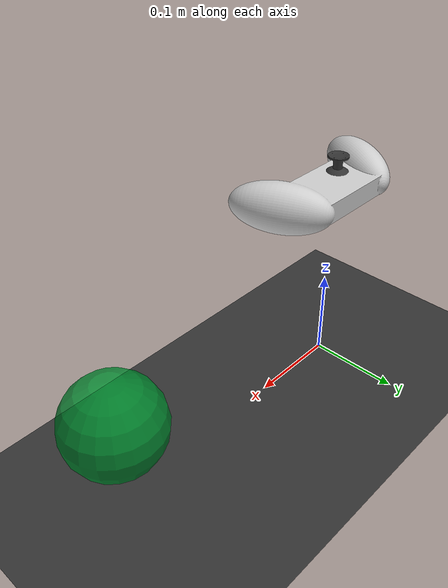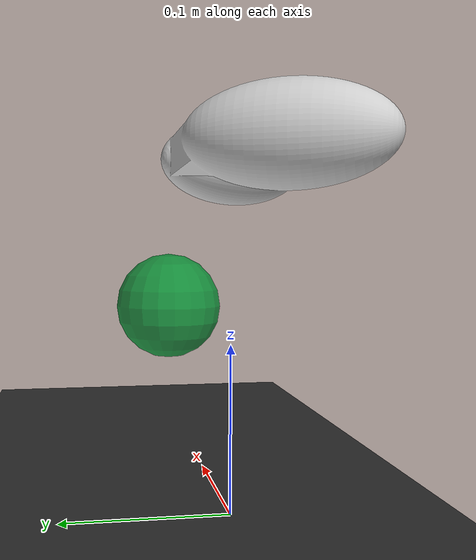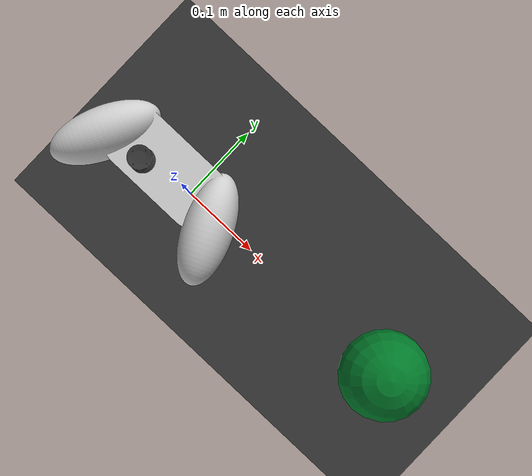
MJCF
<?xml version="1.0"?>
<mujoco model="controller-thumbstick-task">

    <!-- Compiler -->
    <compiler angle="radian"/>
    <option timestep="0.002" gravity="0 0 -9.81"/>

    <!-- Visual Settings -->
    <visual>
        <global offwidth="1920" offheight="1080"/>
    </visual>

    <!-- Assets -->
    <asset>
        <!-- Meshes -->
        <mesh name="controller" file="../assets/simple_controller/xbox_controller.stl" scale="0.001 0.001 0.001"/>
        <mesh name="thumbstick" file="../assets/simple_controller/thumb_stick.stl" scale="1 1 1"/>

        <!-- Materials -->
        <material name="mat_controller" rgba="0.95 0.95 0.95 1"/>
        <material name="mat_thumbstick"  rgba="0.95 0.95 0.95 1"/>
        <material name="mat_target" rgba="0 0.6 0.2 0.8"/>
    </asset>

    <worldbody>

        <!-- Lights -->
        <light name="main_light"
               type="directional"
               diffuse="2.0 2.0 2.0"
               specular="0.3 0.3 0.3"
               pos="0.6 0.2 2.0"
               dir="-0.3 -0.2 -1"/>
        <light name="top_light"
               pos="0 0 0.5"
               dir="0 0 -1"
               diffuse="1.5 1.5 1.5"
               specular="0.2 0.2 0.2"/>
        <light name="side_light_l"
               pos="0.3 0.3 0.3"
               dir="-1 -1 -1"
               diffuse="1.2 1.2 1.2"
               specular="0.2 0.2 0.2"/>
        <light name="side_light_r"
               pos="-0.3 0.3 0.3"
               dir="1 -1 -1"
               diffuse="1.2 1.2 1.2"
               specular="0.2 0.2 0.2"/>
        <light name="front_light"
               pos="0 0.3 0.2"
               dir="0 -1 0"
               diffuse="1.0 1.0 1.0"
               specular="0.1 0.1 0.1"/>

        <!-- Ground Plane -->
        <geom name="ground" type="plane" pos="0 0 0" size="2 2 0.1"
              rgba="0.2 0.2 0.2 1"/>

        <!-- Target Sphere -->
        <body name="target" pos="0.3 0.0 0.1">
            <geom name="target_geom" type="sphere" size="0.05" material="mat_target"/>
        </body>

        <!-- Controller Body -->
        <body name="controller" pos="0 0 0.2" euler="0 0 0">

            <!-- Cameras -->
            <camera name="cam_front" pos="0 1.0 0.6" euler="-0.4 0 3.14" fovy="70"/>
            <camera name="cam_back" pos="0 -1.0 0.6" euler="0.4 0 0" fovy="70"/>
            <camera name="cam_top" pos="0 0 1.3" euler="-1.57 0 0" fovy="70"/>
            <camera name="cam_left" pos="-1.0 0 0.5" euler="0 0.4 1.57" fovy="70"/>
            <camera name="cam_right" pos="1.0 0 0.5" euler="0 -0.4 -1.57" fovy="70"/>
            <camera name="cam_diag_front" pos="0.7 0.7 0.6" euler="-0.3 0.3 2.5" fovy="70"/>
            <camera name="cam_diag_back" pos="-0.7 -0.7 0.6" euler="0.3 -0.3 0.7" fovy="70"/>

            <geom name="controller_geom"
                  type="mesh"
                  mesh="controller"
                  material="mat_controller"
                  rgba="0.8 0.8 0.8 1"/>

            <!-- Thumbstick  -->
            <body name="thumbstick_base" pos="-0.02 -0.01 0.02">

                <!-- X-Axis Rotation -->
                <joint name="thumbstick_rx"
                       type="hinge"
                       axis="1 0 0"
                       limited="true"
                       range="-0.35 0.35"
                       damping="0.2"/>

                <!-- Y-Axis Rotation -->
                <joint name="thumbstick_ry"
                       type="hinge"
                       axis="0 1 0"
                       limited="true"
                       range="-0.35 0.35"
                       damping="0.2"/>

                <!-- Invisible mass geom -->
                <geom name="thumbstick_mass" type="sphere" size="0.01" mass="0.01" rgba="0 0 0 0" contype="0" conaffinity="0"/>

                <!-- The Actual Stick -->
                <geom name="thumbstick_geom"
                      type="mesh"
                      mesh="thumbstick"
                      material="mat_thumbstick"
                      rgba="0.2 0.2 0.2 1"
                      mass="0.1"/>
            </body>

        </body>

    </worldbody>

    <contact/>

</mujoco>
